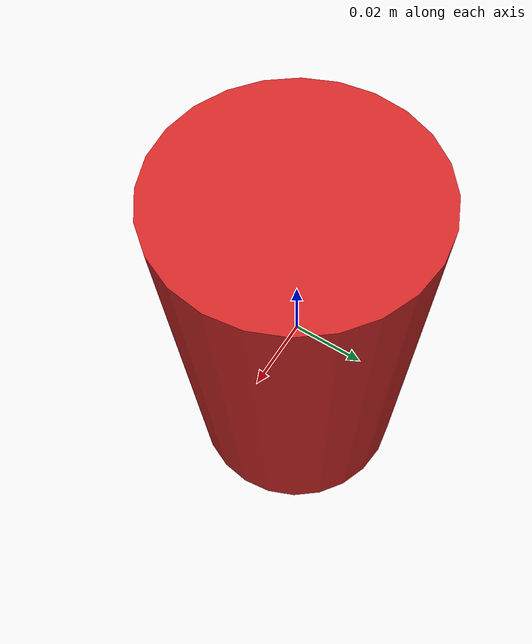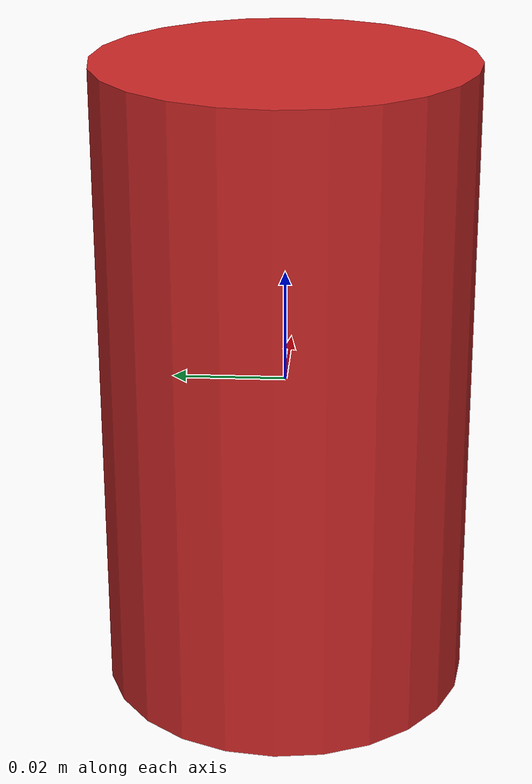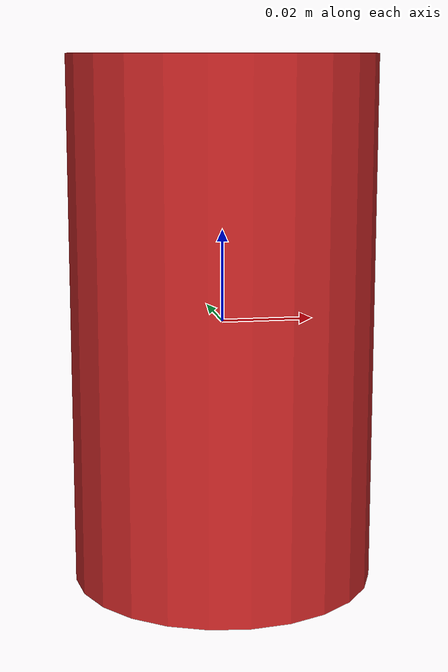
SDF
<?xml version="1.6" ?>
<sdf version="1.6">
  <model name="coke_can">
    <static>false</static>
    <link name="link">
      <inertial>
        <mass>0.355</mass>
        <inertia>
          <ixx>0.001</ixx>
          <iyy>0.001</iyy>
          <izz>0.001</izz>
          <ixy>0.0</ixy>
          <ixz>0.0</ixz>
          <iyz>0.0</iyz>
        </inertia>
      </inertial>
      <collision name="collision">
        <geometry>
          <cylinder>
            <radius>0.033</radius>
            <length>0.115</length>
          </cylinder>
        </geometry>
      </collision>
      <visual name="visual">
        <geometry>
          <cylinder>
            <radius>0.033</radius>
            <length>0.115</length>
          </cylinder>
        </geometry>
        <material>
          <script>
            <uri>file://media/materials/scripts/gazebo.material</uri>
            <name>Gazebo/Red</name>
          </script>
        </material>
      </visual>
    </link>
  </model>
</sdf>
